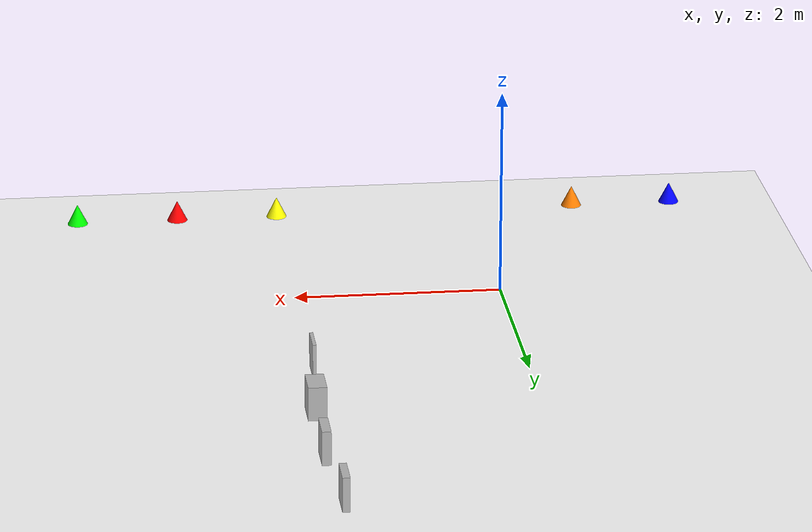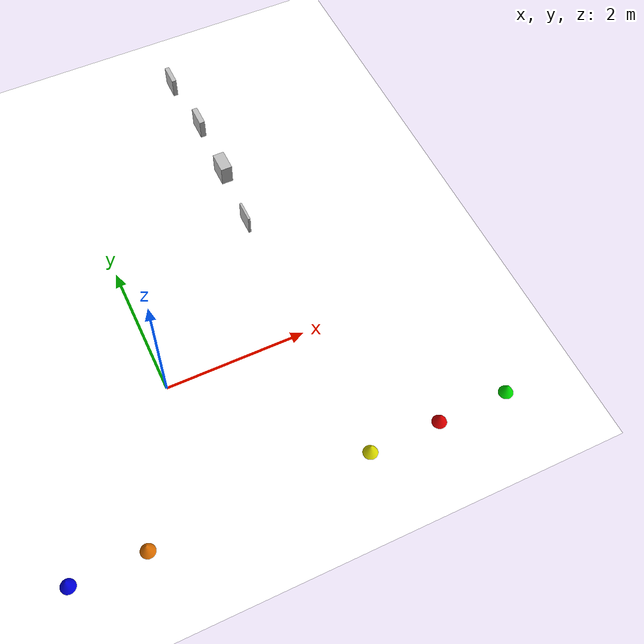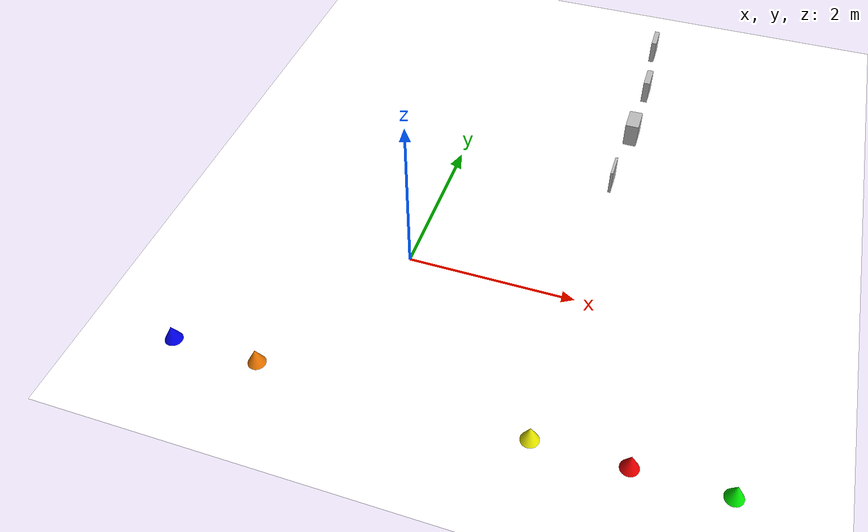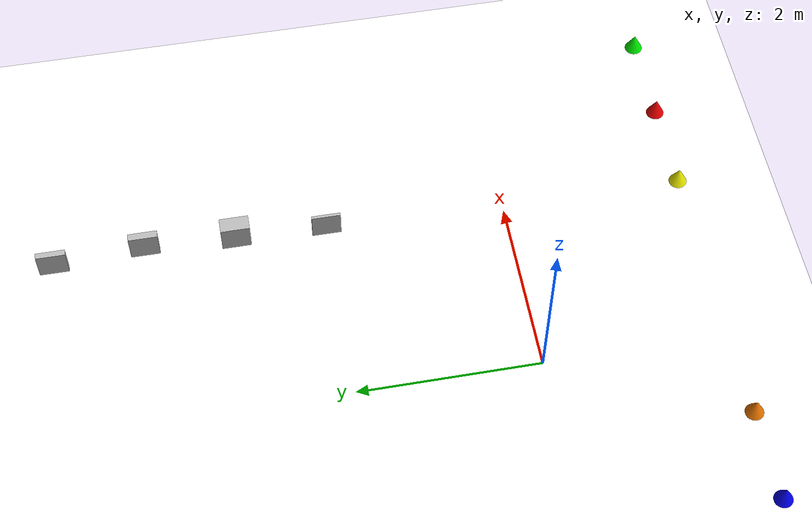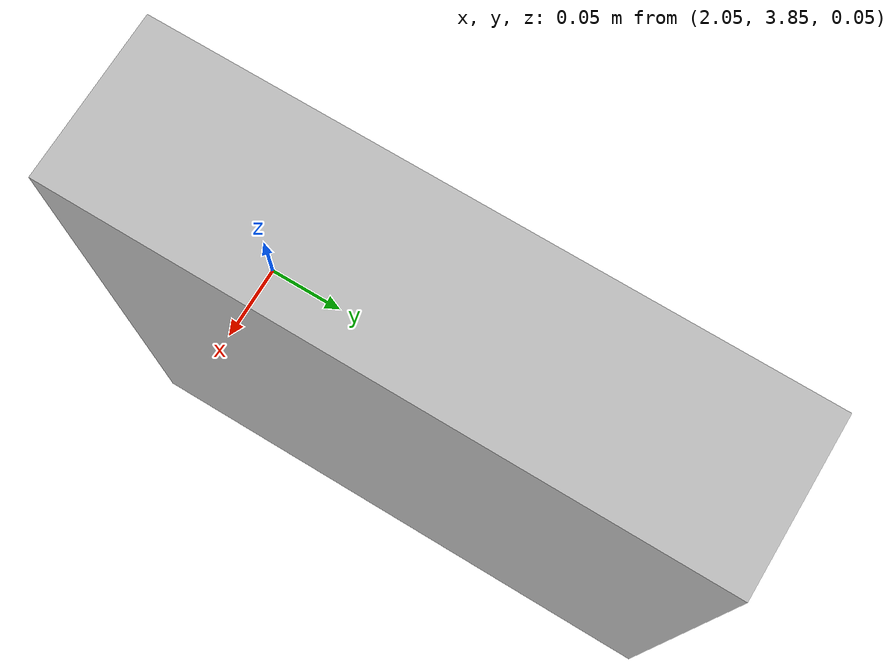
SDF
<?xml version="1.0" ?>
<sdf version="1.7">
	<world name="shakti_world">

		<plugin filename="libignition-gazebo6-physics-system.so"
        		name="ignition::gazebo::systems::Physics"/>

		<plugin filename="libignition-gazebo6-user-commands-system.so"
        		name="ignition::gazebo::systems::UserCommands"/>

		<plugin filename="libignition-gazebo6-scene-broadcaster-system.so"
        		name="ignition::gazebo::systems::SceneBroadcaster"/>

        	<plugin
  			filename="libignition-gazebo6-sensors-system.so"
  			name="ignition::gazebo::systems::Sensors">
  			<render_engine>ogre2</render_engine>
		</plugin>

		<plugin
    			filename="libignition-gazebo6-imu-system.so"
    			name="ignition::gazebo::systems::Imu"/>

		<physics name="physics_engine" type="ode">
			<max_step_size> 0.001 </max_step_size>
			<real_time_factor> 1.0 </real_time_factor>
			<real_time_update_rate> 1000 </real_time_update_rate>
		</physics>

		<gravity> 0 0 -9.81 </gravity>

		<light type="directional" name="sun">
		    <cast_shadows>false</cast_shadows>
		    <pose>0 0 10 0 0 0</pose>
		    <diffuse>0.8 0.8 0.8 1</diffuse>
		    <specular>0.1 0.1 0.1 1</specular>
		    <direction>-0.5 0.1 -0.9</direction>
		</light>

		<light type="directional" name="backlight">
		    <cast_shadows>false</cast_shadows>
		    <pose>0 0 10 0 0 0</pose>
		    <diffuse>0.6 0.6 0.6 1</diffuse>
		    <specular>0.0 0.0 0.0 1</specular>
		    <direction>0.5 -0.1 0.9</direction>
		</light>

		<model name="ground_plane">
			<static>true</static>
			<link name="plane">
				<visual name="ground_visual">
					<geometry>
						<plane>
							<normal> 0 0 1</normal>
							<size> 100 100 </size>
						</plane>
					</geometry>

					<material>
						<ambient>1 1 1 1</ambient>
  						<diffuse>1 1 1 1</diffuse>
  						<specular>0 0 0 1</specular>
					</material>

				</visual>

				<collision name="ground_collision">
					<geometry>
						<plane>
							<normal> 0 0 1</normal>
							<size> 100 100</size>
						</plane>
					</geometry>
				</collision>
			</link>

			<link name="circle">
				<pose relative_to="plane">0.5 0.5 0.2 0 0 0</pose>
				<visual name="cir_visual">
					<geometry>
						<sphere>
							<radius>0.2</radius>
						</sphere>
					</geometry>
					<material>
						<ambient>0 1 1 1 </ambient>
						<diffuse>0 1 1 1 </diffuse>
					</material>
				</visual>
				<collision name="cir_collision">
					<geometry>
						<sphere>
							<radius>0.2</radius>
						</sphere>
					</geometry>
				</collision>
			</link>

			<link name="circle_2">
				<pose relative_to="plane">6 0 0.4 0 0 0</pose>
				<visual name="cir_2_visual">
					<geometry>
						<sphere>
							<radius>0.4</radius>
						</sphere>
					</geometry>
					<material>
						<ambient>0 1 1 1 </ambient>
						<diffuse>0 1 1 1 </diffuse>
					</material>
				</visual>
				<collision name="cir_2_collision">
					<geometry>
						<sphere>
							<radius>0.4</radius>
						</sphere>
					</geometry>
				</collision>
			</link>

			<link name="box">
				<pose relative_to="plane">4 4 0.2 0 0 0</pose>
				<visual name="box_visual">
					<geometry>
						<box>
							<size>0.4 0.4 0.4</size>
						</box>
					</geometry>
					<material>
						<ambient>0 1 1 1 </ambient>
						<diffuse>0 1 1 1 </diffuse>
					</material>
				</visual>
				<collision name="box_collision">
					<geometry>
						<box>
							<size>0.4 0.4 0.4</size>
						</box>
					</geometry>
				</collision>
			</link>

		</model>

		<model name="aruco_marker_plane">
		    <static>true</static>
		    <pose>2 2 0.22 0 0 0</pose>
		    <link name="aruco_link">
		        <visual name="visual_aruco">
		            <geometry>
		                <mesh>
		                    <uri>file:///home/safiya/ros2_ws/src/rover/world/aruco.dae</uri>
		                    <scale>1.0 1.0 1.0</scale>
		                </mesh>
		            </geometry>
		        </visual>
		        <collision name="collision_aruco">
		            <geometry>
		                <mesh>
		                    <uri>file:///home/safiya/ros2_ws/src/rover/world/aruco.dae</uri>
		                    <scale>1.0 1.0 1.0</scale>
		                </mesh>
		            </geometry>
		        </collision>
		    </link>
		</model>

		<model name="aruco_marker_plane2">
		    <static>true</static>
		    <pose>2 3 0.22 0 0 0</pose>
		    <link name="aruco_link2">
		        <visual name="visual_aruco">
		            <geometry>
		                <mesh>
		                    <uri>file:///home/safiya/ros2_ws/src/rover/world/aruco1.dae</uri>
		                    <scale>1.0 1.0 1.0</scale>
		                </mesh>
		            </geometry>
		        </visual>
		        <collision name="collision_aruco">
		            <geometry>
		                <mesh>
		                    <uri>file:///home/safiya/ros2_ws/src/rover/world/aruco1.dae</uri>
		                    <scale>1.0 1.0 1.0</scale>
		                </mesh>
		            </geometry>
		        </collision>
		    </link>
		</model>

		<model name="aruco_marker_plane3">
		    <static>true</static>
		    <pose>2 4 0.22 0 0 0</pose>
		    <link name="aruco_link3">
		        <visual name="visual_aruco">
		            <geometry>
		                <mesh>
		                    <uri>file:///home/safiya/ros2_ws/src/rover/world/aruco2.dae</uri>
		                    <scale>1.0 1.0 1.0</scale>
		                </mesh>
		            </geometry>
		        </visual>
		        <collision name="collision_aruco">
		            <geometry>
		                <mesh>
		                    <uri>file:///home/safiya/ros2_ws/src/rover/world/aruco2.dae</uri>
		                    <scale>1.0 1.0 1.0</scale>
		                </mesh>
		            </geometry>
		        </collision>
		    </link>
		</model>

		<model name="aruco_marker_plane4">
		    <static>true</static>
		    <pose>2 5 0.22 0 0 0</pose>
		    <link name="aruco_link4">
		        <visual name="visual_aruco">
		            <geometry>
		                <mesh>
		                    <uri>file:///home/safiya/ros2_ws/src/rover/world/aruco3.dae</uri>
		                    <scale>1.0 1.0 1.0</scale>
		                </mesh>
		            </geometry>
		        </visual>
		        <collision name="collision_aruco">
		            <geometry>
		                <mesh>
		                    <uri>file:///home/safiya/ros2_ws/src/rover/world/aruco3.dae</uri>
		                    <scale>1.0 1.0 1.0</scale>
		                </mesh>
		            </geometry>
		        </collision>
		    </link>
		</model>

		<model name="red_cone">
			<static>true</static>
			<pose>3 -2 0.2 0 0 0</pose>
			<link name="red">
				<visual name="visual">
					<geometry>
						<mesh>
							<uri>file:///home/safiya/ros2_ws/src/rover/world/cone_red.dae</uri>
							<scale>0.1 0.1 0.1</scale>
						</mesh>

					</geometry>
				</visual>
			</link>
		</model>

		<model name="yellow_cone">
			<static>true</static>
			<pose>2 -2 0.2 0 0 0</pose>
			<link name="yellow">
				<visual name="visual">
					<geometry>
						<mesh>
							<uri>file:///home/safiya/ros2_ws/src/rover/world/cone_yellow.dae</uri>
							<scale>0.1 0.1 0.1</scale>
						</mesh>
					</geometry>
				</visual>
			</link>
		</model>

		<model name="green_cone">
			<static>true</static>
			<pose>4 -2 0.2 0 0 0</pose>
			<link name="green">
				<visual name="visual">
					<geometry>
						<mesh>
							<uri>file:///home/safiya/ros2_ws/src/rover/world/cone_green.dae</uri>
							<scale>0.1 0.1 0.1</scale>
						</mesh>

					</geometry>
				</visual>
			</link>
		</model>

		<model name="orange_cone">
			<static>true</static>
			<pose>-1 -2 0.2 0 0 0</pose>
			<link name="orange">
				<visual name="visual">
					<geometry>
						<mesh>
							<uri>file:///home/safiya/ros2_ws/src/rover/world/cone_orange.dae</uri>
							<scale>0.1 0.1 0.1</scale>
						</mesh>

					</geometry>
				</visual>
			</link>
		</model>

		<model name="blue_cone">
			<static>true</static>
			<pose>-2 -2 0.2 0 0 0</pose>
			<link name="blue">
				<visual name="visual">
					<geometry>
						<mesh>
							<uri>file:///home/safiya/ros2_ws/src/rover/world/cone_blue.dae</uri>
							<scale>0.1 0.1 0.1</scale>
						</mesh>

					</geometry>
				</visual>
			</link>
		</model>

	</world>
</sdf>
